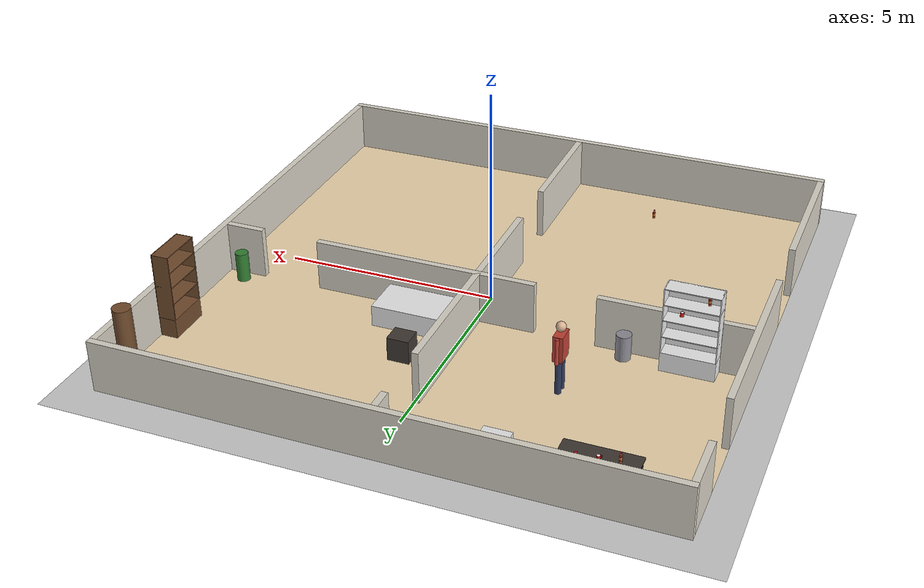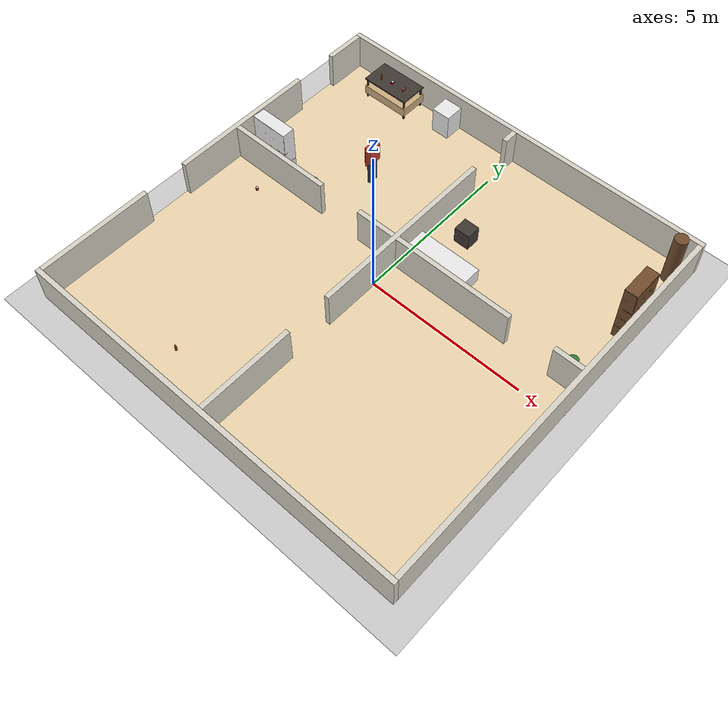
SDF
<sdf version="1.6">
 <world name="robocup_casa">
  <include><uri>model://sun</uri></include>
  <include><uri>model://ground_plane</uri></include>
  <model name="muros">
   <static>true</static>
   <link name="l0">
    <pose>0.000 -6.225 0.600 0 0 0.0000</pose>
    <collision name="c"><geometry><box><size>12.600 0.150 1.200</size></box></geometry></collision>
    <visual name="v">
     <geometry><box><size>12.600 0.150 1.200</size></box></geometry>
     <material><ambient>0.85 0.83 0.78 1</ambient><diffuse>0.85 0.83 0.78 1</diffuse></material>
    </visual>
   </link>
   <link name="l1">
    <pose>0.000 6.225 0.600 0 0 0.0000</pose>
    <collision name="c"><geometry><box><size>12.600 0.150 1.200</size></box></geometry></collision>
    <visual name="v">
     <geometry><box><size>12.600 0.150 1.200</size></box></geometry>
     <material><ambient>0.85 0.83 0.78 1</ambient><diffuse>0.85 0.83 0.78 1</diffuse></material>
    </visual>
   </link>
   <link name="l2">
    <pose>6.225 0.000 0.600 0 0 0.0000</pose>
    <collision name="c"><geometry><box><size>0.150 12.300 1.200</size></box></geometry></collision>
    <visual name="v">
     <geometry><box><size>0.150 12.300 1.200</size></box></geometry>
     <material><ambient>0.85 0.83 0.78 1</ambient><diffuse>0.85 0.83 0.78 1</diffuse></material>
    </visual>
   </link>
   <link name="l3">
    <pose>-6.225 -4.356 0.600 0 0 0.0000</pose>
    <collision name="c"><geometry><box><size>0.150 3.588 1.200</size></box></geometry></collision>
    <visual name="v">
     <geometry><box><size>0.150 3.588 1.200</size></box></geometry>
     <material><ambient>0.85 0.83 0.78 1</ambient><diffuse>0.85 0.83 0.78 1</diffuse></material>
    </visual>
   </link>
   <link name="l4">
    <pose>-6.225 1.169 0.600 0 0 0.0000</pose>
    <collision name="c"><geometry><box><size>0.150 4.662 1.200</size></box></geometry></collision>
    <visual name="v">
     <geometry><box><size>0.150 4.662 1.200</size></box></geometry>
     <material><ambient>0.85 0.83 0.78 1</ambient><diffuse>0.85 0.83 0.78 1</diffuse></material>
    </visual>
   </link>
   <link name="l5">
    <pose>-6.225 5.525 0.600 0 0 0.0000</pose>
    <collision name="c"><geometry><box><size>0.150 1.250 1.200</size></box></geometry></collision>
    <visual name="v">
     <geometry><box><size>0.150 1.250 1.200</size></box></geometry>
     <material><ambient>0.85 0.83 0.78 1</ambient><diffuse>0.85 0.83 0.78 1</diffuse></material>
    </visual>
   </link>
   <link name="l6">
    <pose>-0.035 -4.664 0.600 0 0 0.0000</pose>
    <collision name="c"><geometry><box><size>0.150 2.972 1.200</size></box></geometry></collision>
    <visual name="v">
     <geometry><box><size>0.150 2.972 1.200</size></box></geometry>
     <material><ambient>0.85 0.83 0.78 1</ambient><diffuse>0.85 0.83 0.78 1</diffuse></material>
    </visual>
   </link>
   <link name="l7">
    <pose>-0.035 1.253 0.600 0 0 0.0000</pose>
    <collision name="c"><geometry><box><size>0.150 6.062 1.200</size></box></geometry></collision>
    <visual name="v">
     <geometry><box><size>0.150 6.062 1.200</size></box></geometry>
     <material><ambient>0.85 0.83 0.78 1</ambient><diffuse>0.85 0.83 0.78 1</diffuse></material>
    </visual>
   </link>
   <link name="l8">
    <pose>-0.035 5.917 0.600 0 0 0.0000</pose>
    <collision name="c"><geometry><box><size>0.150 0.466 1.200</size></box></geometry></collision>
    <visual name="v">
     <geometry><box><size>0.150 0.466 1.200</size></box></geometry>
     <material><ambient>0.85 0.83 0.78 1</ambient><diffuse>0.85 0.83 0.78 1</diffuse></material>
    </visual>
   </link>
   <link name="l9">
    <pose>-4.461 0.917 0.600 0 0 0.0000</pose>
    <collision name="c"><geometry><box><size>3.378 0.150 1.200</size></box></geometry></collision>
    <visual name="v">
     <geometry><box><size>3.378 0.150 1.200</size></box></geometry>
     <material><ambient>0.85 0.83 0.78 1</ambient><diffuse>0.85 0.83 0.78 1</diffuse></material>
    </visual>
   </link>
   <link name="l10">
    <pose>1.239 0.917 0.600 0 0 0.0000</pose>
    <collision name="c"><geometry><box><size>5.222 0.150 1.200</size></box></geometry></collision>
    <visual name="v">
     <geometry><box><size>5.222 0.150 1.200</size></box></geometry>
     <material><ambient>0.85 0.83 0.78 1</ambient><diffuse>0.85 0.83 0.78 1</diffuse></material>
    </visual>
   </link>
   <link name="l11">
    <pose>5.700 0.917 0.600 0 0 0.0000</pose>
    <collision name="c"><geometry><box><size>0.900 0.150 1.200</size></box></geometry></collision>
    <visual name="v">
     <geometry><box><size>0.900 0.150 1.200</size></box></geometry>
     <material><ambient>0.85 0.83 0.78 1</ambient><diffuse>0.85 0.83 0.78 1</diffuse></material>
    </visual>
   </link>
  </model>
  <model name="piso_casa">
   <static>true</static>
   <link name="l">
    <pose>0.000 0.000 0.0005 0 0 0</pose>
    <visual name="v">
     <geometry><box><size>12.6 12.6 0.001</size></box></geometry>
     <material><ambient>0.93 0.84 0.68 1</ambient><diffuse>0.93 0.84 0.68 1</diffuse></material>
    </visual>
   </link>
  </model>
  <model name="laundry_table">
   <static>true</static>
   <link name="l0">
    <pose>-4.298 5.700 0.300 0 0 0.0000</pose>
    <collision name="c"><geometry><box><size>1.600 0.900 0.300</size></box></geometry></collision>
    <visual name="v">
     <geometry><box><size>1.600 0.900 0.300</size></box></geometry>
     <material><ambient>0.80 0.68 0.50 1</ambient><diffuse>0.80 0.68 0.50 1</diffuse></material>
    </visual>
   </link>
   <link name="l1">
    <pose>-4.298 5.700 0.730 0 0 0.0000</pose>
    <collision name="c"><geometry><box><size>1.600 0.900 0.040</size></box></geometry></collision>
    <visual name="v">
     <geometry><box><size>1.600 0.900 0.040</size></box></geometry>
     <material><ambient>0.25 0.22 0.20 1</ambient><diffuse>0.25 0.22 0.20 1</diffuse></material>
    </visual>
   </link>
   <link name="l2">
    <pose>-5.038 5.310 0.355 0 0 0.0000</pose>
    <collision name="c"><geometry><box><size>0.050 0.050 0.710</size></box></geometry></collision>
    <visual name="v">
     <geometry><box><size>0.050 0.050 0.710</size></box></geometry>
     <material><ambient>0.25 0.22 0.20 1</ambient><diffuse>0.25 0.22 0.20 1</diffuse></material>
    </visual>
   </link>
   <link name="l3">
    <pose>-5.038 6.090 0.355 0 0 0.0000</pose>
    <collision name="c"><geometry><box><size>0.050 0.050 0.710</size></box></geometry></collision>
    <visual name="v">
     <geometry><box><size>0.050 0.050 0.710</size></box></geometry>
     <material><ambient>0.25 0.22 0.20 1</ambient><diffuse>0.25 0.22 0.20 1</diffuse></material>
    </visual>
   </link>
   <link name="l4">
    <pose>-3.558 5.310 0.355 0 0 0.0000</pose>
    <collision name="c"><geometry><box><size>0.050 0.050 0.710</size></box></geometry></collision>
    <visual name="v">
     <geometry><box><size>0.050 0.050 0.710</size></box></geometry>
     <material><ambient>0.25 0.22 0.20 1</ambient><diffuse>0.25 0.22 0.20 1</diffuse></material>
    </visual>
   </link>
   <link name="l5">
    <pose>-3.558 6.090 0.355 0 0 0.0000</pose>
    <collision name="c"><geometry><box><size>0.050 0.050 0.710</size></box></geometry></collision>
    <visual name="v">
     <geometry><box><size>0.050 0.050 0.710</size></box></geometry>
     <material><ambient>0.25 0.22 0.20 1</ambient><diffuse>0.25 0.22 0.20 1</diffuse></material>
    </visual>
   </link>
  </model>
  <model name="washing_machine">
   <static>true</static>
   <link name="l0">
    <pose>-2.310 5.850 0.425 0 0 0.0000</pose>
    <collision name="c"><geometry><box><size>0.600 0.600 0.850</size></box></geometry></collision>
    <visual name="v">
     <geometry><box><size>0.600 0.600 0.850</size></box></geometry>
     <material><ambient>0.92 0.92 0.92 1</ambient><diffuse>0.92 0.92 0.92 1</diffuse></material>
    </visual>
   </link>
  </model>
  <model name="shelf">
   <static>true</static>
   <link name="l0">
    <pose>-4.900 1.192 0.225 0 0 0.0000</pose>
    <collision name="c"><geometry><box><size>1.200 0.400 0.450</size></box></geometry></collision>
    <visual name="v">
     <geometry><box><size>1.200 0.400 0.450</size></box></geometry>
     <material><ambient>0.92 0.92 0.92 1</ambient><diffuse>0.92 0.92 0.92 1</diffuse></material>
    </visual>
   </link>
   <link name="l1">
    <pose>-4.900 1.002 1.225 0 0 0.0000</pose>
    <collision name="c"><geometry><box><size>1.200 0.020 1.550</size></box></geometry></collision>
    <visual name="v">
     <geometry><box><size>1.200 0.020 1.550</size></box></geometry>
     <material><ambient>0.92 0.92 0.92 1</ambient><diffuse>0.92 0.92 0.92 1</diffuse></material>
    </visual>
   </link>
   <link name="l2">
    <pose>-5.490 1.192 1.225 0 0 0.0000</pose>
    <collision name="c"><geometry><box><size>0.020 0.400 1.550</size></box></geometry></collision>
    <visual name="v">
     <geometry><box><size>0.020 0.400 1.550</size></box></geometry>
     <material><ambient>0.92 0.92 0.92 1</ambient><diffuse>0.92 0.92 0.92 1</diffuse></material>
    </visual>
   </link>
   <link name="l3">
    <pose>-4.310 1.192 1.225 0 0 0.0000</pose>
    <collision name="c"><geometry><box><size>0.020 0.400 1.550</size></box></geometry></collision>
    <visual name="v">
     <geometry><box><size>0.020 0.400 1.550</size></box></geometry>
     <material><ambient>0.92 0.92 0.92 1</ambient><diffuse>0.92 0.92 0.92 1</diffuse></material>
    </visual>
   </link>
   <link name="l4">
    <pose>-4.900 1.192 0.840 0 0 0.0000</pose>
    <collision name="c"><geometry><box><size>1.200 0.400 0.020</size></box></geometry></collision>
    <visual name="v">
     <geometry><box><size>1.200 0.400 0.020</size></box></geometry>
     <material><ambient>0.92 0.92 0.92 1</ambient><diffuse>0.92 0.92 0.92 1</diffuse></material>
    </visual>
   </link>
   <link name="l5">
    <pose>-4.900 1.192 1.240 0 0 0.0000</pose>
    <collision name="c"><geometry><box><size>1.200 0.400 0.020</size></box></geometry></collision>
    <visual name="v">
     <geometry><box><size>1.200 0.400 0.020</size></box></geometry>
     <material><ambient>0.92 0.92 0.92 1</ambient><diffuse>0.92 0.92 0.92 1</diffuse></material>
    </visual>
   </link>
   <link name="l6">
    <pose>-4.900 1.192 1.610 0 0 0.0000</pose>
    <collision name="c"><geometry><box><size>1.200 0.400 0.020</size></box></geometry></collision>
    <visual name="v">
     <geometry><box><size>1.200 0.400 0.020</size></box></geometry>
     <material><ambient>0.92 0.92 0.92 1</ambient><diffuse>0.92 0.92 0.92 1</diffuse></material>
    </visual>
   </link>
   <link name="l7">
    <pose>-4.900 1.192 1.990 0 0 0.0000</pose>
    <collision name="c"><geometry><box><size>1.200 0.400 0.020</size></box></geometry></collision>
    <visual name="v">
     <geometry><box><size>1.200 0.400 0.020</size></box></geometry>
     <material><ambient>0.92 0.92 0.92 1</ambient><diffuse>0.92 0.92 0.92 1</diffuse></material>
    </visual>
   </link>
  </model>
  <model name="laundry_trash_bin">
   <static>true</static>
   <link name="l0">
    <pose>-3.472 1.212 0.300 0 0 0.0000</pose>
    <collision name="c">
     <geometry><cylinder><radius>0.170</radius><length>0.600</length></cylinder></geometry>
    </collision>
    <visual name="v">
     <geometry><cylinder><radius>0.170</radius><length>0.600</length></cylinder></geometry>
     <material><ambient>0.55 0.55 0.58 1</ambient><diffuse>0.55 0.55 0.58 1</diffuse></material>
    </visual>
   </link>
  </model>
  <model name="bed">
   <static>true</static>
   <link name="l0">
    <pose>1.040 1.492 0.250 0 0 0.0000</pose>
    <collision name="c"><geometry><box><size>2.000 1.000 0.500</size></box></geometry></collision>
    <visual name="v">
     <geometry><box><size>2.000 1.000 0.500</size></box></geometry>
     <material><ambient>0.92 0.92 0.92 1</ambient><diffuse>0.92 0.92 0.92 1</diffuse></material>
    </visual>
   </link>
  </model>
  <model name="bedside_table">
   <static>true</static>
   <link name="l0">
    <pose>0.910 2.870 0.275 0 0 0.0000</pose>
    <collision name="c"><geometry><box><size>0.500 0.450 0.550</size></box></geometry></collision>
    <visual name="v">
     <geometry><box><size>0.500 0.450 0.550</size></box></geometry>
     <material><ambient>0.25 0.22 0.20 1</ambient><diffuse>0.25 0.22 0.20 1</diffuse></material>
    </visual>
   </link>
  </model>
  <model name="coat_rack">
   <static>true</static>
   <link name="l0">
    <pose>5.850 5.600 0.850 0 0 0.0000</pose>
    <collision name="c">
     <geometry><cylinder><radius>0.200</radius><length>1.700</length></cylinder></geometry>
    </collision>
    <visual name="v">
     <geometry><cylinder><radius>0.200</radius><length>1.700</length></cylinder></geometry>
     <material><ambient>0.45 0.30 0.18 1</ambient><diffuse>0.45 0.30 0.18 1</diffuse></material>
    </visual>
   </link>
  </model>
  <model name="bookshelf">
   <static>true</static>
   <link name="l0">
    <pose>5.950 3.500 0.225 0 0 0.0000</pose>
    <collision name="c"><geometry><box><size>0.400 1.000 0.450</size></box></geometry></collision>
    <visual name="v">
     <geometry><box><size>0.400 1.000 0.450</size></box></geometry>
     <material><ambient>0.45 0.30 0.18 1</ambient><diffuse>0.45 0.30 0.18 1</diffuse></material>
    </visual>
   </link>
   <link name="l1">
    <pose>6.140 3.500 1.225 0 0 0.0000</pose>
    <collision name="c"><geometry><box><size>0.020 1.000 1.550</size></box></geometry></collision>
    <visual name="v">
     <geometry><box><size>0.020 1.000 1.550</size></box></geometry>
     <material><ambient>0.45 0.30 0.18 1</ambient><diffuse>0.45 0.30 0.18 1</diffuse></material>
    </visual>
   </link>
   <link name="l2">
    <pose>5.950 3.010 1.225 0 0 0.0000</pose>
    <collision name="c"><geometry><box><size>0.400 0.020 1.550</size></box></geometry></collision>
    <visual name="v">
     <geometry><box><size>0.400 0.020 1.550</size></box></geometry>
     <material><ambient>0.45 0.30 0.18 1</ambient><diffuse>0.45 0.30 0.18 1</diffuse></material>
    </visual>
   </link>
   <link name="l3">
    <pose>5.950 3.990 1.225 0 0 0.0000</pose>
    <collision name="c"><geometry><box><size>0.400 0.020 1.550</size></box></geometry></collision>
    <visual name="v">
     <geometry><box><size>0.400 0.020 1.550</size></box></geometry>
     <material><ambient>0.45 0.30 0.18 1</ambient><diffuse>0.45 0.30 0.18 1</diffuse></material>
    </visual>
   </link>
   <link name="l4">
    <pose>5.950 3.500 0.840 0 0 0.0000</pose>
    <collision name="c"><geometry><box><size>0.400 1.000 0.020</size></box></geometry></collision>
    <visual name="v">
     <geometry><box><size>0.400 1.000 0.020</size></box></geometry>
     <material><ambient>0.45 0.30 0.18 1</ambient><diffuse>0.45 0.30 0.18 1</diffuse></material>
    </visual>
   </link>
   <link name="l5">
    <pose>5.950 3.500 1.240 0 0 0.0000</pose>
    <collision name="c"><geometry><box><size>0.400 1.000 0.020</size></box></geometry></collision>
    <visual name="v">
     <geometry><box><size>0.400 1.000 0.020</size></box></geometry>
     <material><ambient>0.45 0.30 0.18 1</ambient><diffuse>0.45 0.30 0.18 1</diffuse></material>
    </visual>
   </link>
   <link name="l6">
    <pose>5.950 3.500 1.610 0 0 0.0000</pose>
    <collision name="c"><geometry><box><size>0.400 1.000 0.020</size></box></geometry></collision>
    <visual name="v">
     <geometry><box><size>0.400 1.000 0.020</size></box></geometry>
     <material><ambient>0.45 0.30 0.18 1</ambient><diffuse>0.45 0.30 0.18 1</diffuse></material>
    </visual>
   </link>
   <link name="l7">
    <pose>5.950 3.500 1.990 0 0 0.0000</pose>
    <collision name="c"><geometry><box><size>0.400 1.000 0.020</size></box></geometry></collision>
    <visual name="v">
     <geometry><box><size>0.400 1.000 0.020</size></box></geometry>
     <material><ambient>0.45 0.30 0.18 1</ambient><diffuse>0.45 0.30 0.18 1</diffuse></material>
    </visual>
   </link>
  </model>
  <model name="planta_bedroom">
   <static>true</static>
   <link name="l0">
    <pose>5.670 1.262 0.350 0 0 0.0000</pose>
    <collision name="c">
     <geometry><cylinder><radius>0.150</radius><length>0.700</length></cylinder></geometry>
    </collision>
    <visual name="v">
     <geometry><cylinder><radius>0.150</radius><length>0.700</length></cylinder></geometry>
     <material><ambient>0.20 0.50 0.20 1</ambient><diffuse>0.20 0.50 0.20 1</diffuse></material>
    </visual>
   </link>
  </model>
  <model name="botella_laundry">
   <pose>-4.698 5.550 0.751 0 0 1.571</pose>
   <link name="link">
    <inertial>
     <pose>0 0 0.1100 0 0 0</pose>
     <mass>0.55</mass>
     <inertia>
      <ixx>2.368e-03</ixx>
      <iyy>2.368e-03</iyy>
      <izz>2.995e-04</izz>
      <ixy>0</ixy>
      <ixz>0</ixz>
      <iyz>0</iyz>
     </inertia>
    </inertial>
    <collision name="c">
     <pose>0 0 0.1100 0 0 0</pose>
     <geometry><cylinder><radius>0.0330</radius><length>0.2200</length></cylinder></geometry>
     <surface><friction><ode><mu>1.0</mu><mu2>1.0</mu2></ode></friction></surface>
    </collision>
    <visual name="v0">
     <pose>0 0 0.075 0 0 0</pose>
     <geometry><cylinder><radius>0.0330</radius><length>0.1500</length></cylinder></geometry>
     <material><ambient>0.86 0.40 0.22 1</ambient><diffuse>0.86 0.40 0.22 1</diffuse></material>
    </visual>
    <visual name="v1">
     <pose>0 0 0.16 0 0 0</pose>
     <geometry><cylinder><radius>0.0270</radius><length>0.0200</length></cylinder></geometry>
     <material><ambient>0.86 0.40 0.22 1</ambient><diffuse>0.86 0.40 0.22 1</diffuse></material>
    </visual>
    <visual name="v2">
     <pose>0 0 0.182 0 0 0</pose>
     <geometry><cylinder><radius>0.0150</radius><length>0.0250</length></cylinder></geometry>
     <transparency>0.4</transparency>
     <material><ambient>0.75 0.78 0.80 1</ambient><diffuse>0.75 0.78 0.80 1</diffuse></material>
    </visual>
    <visual name="v3">
     <pose>0 0 0.192 0 0 0</pose>
     <geometry><cylinder><radius>0.0190</radius><length>0.0040</length></cylinder></geometry>
     <transparency>0.2</transparency>
     <material><ambient>0.75 0.78 0.80 1</ambient><diffuse>0.75 0.78 0.80 1</diffuse></material>
    </visual>
    <visual name="v4">
     <pose>0 0 0.2075 0 0 0</pose>
     <geometry><cylinder><radius>0.0160</radius><length>0.0250</length></cylinder></geometry>
     <material><ambient>0.80 0.10 0.12 1</ambient><diffuse>0.80 0.10 0.12 1</diffuse></material>
    </visual>
    <visual name="v5">
     <pose>0 0 0.13 0 0 0</pose>
     <geometry><cylinder><radius>0.0340</radius><length>0.0120</length></cylinder></geometry>
     <material><ambient>0.80 0.10 0.12 1</ambient><diffuse>0.80 0.10 0.12 1</diffuse></material>
    </visual>
    <visual name="v6">
     <pose>0 0 0.0625 0 0 0</pose>
     <geometry><cylinder><radius>0.0340</radius><length>0.0150</length></cylinder></geometry>
     <material><ambient>0.85 0.75 0.20 1</ambient><diffuse>0.85 0.75 0.20 1</diffuse></material>
    </visual>
    <visual name="v7">
     <pose>0 0 0.05 0 0 0</pose>
     <geometry><cylinder><radius>0.0340</radius><length>0.0100</length></cylinder></geometry>
     <material><ambient>0.30 0.60 0.25 1</ambient><diffuse>0.30 0.60 0.25 1</diffuse></material>
    </visual>
    <visual name="v8">
     <pose>0 0 0.0375 0 0 0</pose>
     <geometry><cylinder><radius>0.0340</radius><length>0.0150</length></cylinder></geometry>
     <material><ambient>0.80 0.10 0.12 1</ambient><diffuse>0.80 0.10 0.12 1</diffuse></material>
    </visual>
   </link>
  </model>
  <model name="taza_laundry">
   <pose>-4.298 5.630 0.751 0 0 -2.312</pose>
   <link name="link">
    <inertial>
     <pose>0 0 0.0475 0 0 0</pose>
     <mass>0.3</mass>
     <inertia>
      <ixx>3.643e-04</ixx>
      <iyy>3.643e-04</iyy>
      <izz>2.773e-04</izz>
      <ixy>0</ixy>
      <ixz>0</ixz>
      <iyz>0</iyz>
     </inertia>
    </inertial>
    <collision name="c">
     <pose>0 0 0.0475 0 0 0</pose>
     <geometry><cylinder><radius>0.0430</radius><length>0.0950</length></cylinder></geometry>
     <surface><friction><ode><mu>1.0</mu><mu2>1.0</mu2></ode></friction></surface>
    </collision>
    <visual name="v0">
     <pose>0 0 0.0475 0 0 0</pose>
     <geometry><cylinder><radius>0.0430</radius><length>0.0950</length></cylinder></geometry>
     <material><ambient>0.82 0.08 0.08 1</ambient><diffuse>0.82 0.08 0.08 1</diffuse></material>
    </visual>
    <visual name="v1">
     <pose>0 0 0.0945 0 0 0</pose>
     <geometry><cylinder><radius>0.0370</radius><length>0.0020</length></cylinder></geometry>
     <material><ambient>0.95 0.95 0.95 1</ambient><diffuse>0.95 0.95 0.95 1</diffuse></material>
    </visual>
    <visual name="v2">
     <pose>0.073 0 0.048 0 0 0</pose>
     <geometry><box><size>0.0120 0.0140 0.0660</size></box></geometry>
     <material><ambient>0.82 0.08 0.08 1</ambient><diffuse>0.82 0.08 0.08 1</diffuse></material>
    </visual>
    <visual name="v3">
     <pose>0.058 0 0.075 0 0 0</pose>
     <geometry><box><size>0.0320 0.0140 0.0120</size></box></geometry>
     <material><ambient>0.82 0.08 0.08 1</ambient><diffuse>0.82 0.08 0.08 1</diffuse></material>
    </visual>
    <visual name="v4">
     <pose>0.058 0 0.021 0 0 0</pose>
     <geometry><box><size>0.0320 0.0140 0.0120</size></box></geometry>
     <material><ambient>0.82 0.08 0.08 1</ambient><diffuse>0.82 0.08 0.08 1</diffuse></material>
    </visual>
   </link>
  </model>
  <model name="galletas_laundry">
   <pose>-3.878 5.670 0.751 0 0 1.871</pose>
   <link name="link">
    <inertial>
     <pose>0 0 0.0175 0 0 0</pose>
     <mass>0.13</mass>
     <inertia>
      <ixx>5.491e-05</ixx>
      <iyy>4.044e-04</iyy>
      <izz>4.327e-04</izz>
      <ixy>0</ixy>
      <ixz>0</ixz>
      <iyz>0</iyz>
     </inertia>
    </inertial>
    <collision name="c">
     <pose>0 0 0.0175 0 0 0</pose>
     <geometry><box><size>0.1900 0.0620 0.0350</size></box></geometry>
     <surface><friction><ode><mu>1.0</mu><mu2>1.0</mu2></ode></friction></surface>
    </collision>
    <visual name="v0">
     <pose>0 0 0.0175 0 0 0</pose>
     <geometry><box><size>0.1900 0.0620 0.0350</size></box></geometry>
     <material><ambient>0.70 0.08 0.10 1</ambient><diffuse>0.70 0.08 0.10 1</diffuse></material>
    </visual>
    <visual name="v1">
     <pose>0.02 0 0.0355 0 0 0</pose>
     <geometry><box><size>0.1200 0.0300 0.0010</size></box></geometry>
     <material><ambient>0.85 0.65 0.30 1</ambient><diffuse>0.85 0.65 0.30 1</diffuse></material>
    </visual>
   </link>
  </model>
  <model name="taza_estante">
   <pose>-4.650 1.102 1.251 0 0 -1.571</pose>
   <link name="link">
    <inertial>
     <pose>0 0 0.0475 0 0 0</pose>
     <mass>0.3</mass>
     <inertia>
      <ixx>3.643e-04</ixx>
      <iyy>3.643e-04</iyy>
      <izz>2.773e-04</izz>
      <ixy>0</ixy>
      <ixz>0</ixz>
      <iyz>0</iyz>
     </inertia>
    </inertial>
    <collision name="c">
     <pose>0 0 0.0475 0 0 0</pose>
     <geometry><cylinder><radius>0.0430</radius><length>0.0950</length></cylinder></geometry>
     <surface><friction><ode><mu>1.0</mu><mu2>1.0</mu2></ode></friction></surface>
    </collision>
    <visual name="v0">
     <pose>0 0 0.0475 0 0 0</pose>
     <geometry><cylinder><radius>0.0430</radius><length>0.0950</length></cylinder></geometry>
     <material><ambient>0.82 0.08 0.08 1</ambient><diffuse>0.82 0.08 0.08 1</diffuse></material>
    </visual>
    <visual name="v1">
     <pose>0 0 0.0945 0 0 0</pose>
     <geometry><cylinder><radius>0.0370</radius><length>0.0020</length></cylinder></geometry>
     <material><ambient>0.95 0.95 0.95 1</ambient><diffuse>0.95 0.95 0.95 1</diffuse></material>
    </visual>
    <visual name="v2">
     <pose>0.073 0 0.048 0 0 0</pose>
     <geometry><box><size>0.0120 0.0140 0.0660</size></box></geometry>
     <material><ambient>0.82 0.08 0.08 1</ambient><diffuse>0.82 0.08 0.08 1</diffuse></material>
    </visual>
    <visual name="v3">
     <pose>0.058 0 0.075 0 0 0</pose>
     <geometry><box><size>0.0320 0.0140 0.0120</size></box></geometry>
     <material><ambient>0.82 0.08 0.08 1</ambient><diffuse>0.82 0.08 0.08 1</diffuse></material>
    </visual>
    <visual name="v4">
     <pose>0.058 0 0.021 0 0 0</pose>
     <geometry><box><size>0.0320 0.0140 0.0120</size></box></geometry>
     <material><ambient>0.82 0.08 0.08 1</ambient><diffuse>0.82 0.08 0.08 1</diffuse></material>
    </visual>
   </link>
  </model>
  <model name="botella_estante">
   <pose>-5.200 1.072 1.621 0 0 -1.571</pose>
   <link name="link">
    <inertial>
     <pose>0 0 0.1100 0 0 0</pose>
     <mass>0.55</mass>
     <inertia>
      <ixx>2.368e-03</ixx>
      <iyy>2.368e-03</iyy>
      <izz>2.995e-04</izz>
      <ixy>0</ixy>
      <ixz>0</ixz>
      <iyz>0</iyz>
     </inertia>
    </inertial>
    <collision name="c">
     <pose>0 0 0.1100 0 0 0</pose>
     <geometry><cylinder><radius>0.0330</radius><length>0.2200</length></cylinder></geometry>
     <surface><friction><ode><mu>1.0</mu><mu2>1.0</mu2></ode></friction></surface>
    </collision>
    <visual name="v0">
     <pose>0 0 0.075 0 0 0</pose>
     <geometry><cylinder><radius>0.0330</radius><length>0.1500</length></cylinder></geometry>
     <material><ambient>0.86 0.40 0.22 1</ambient><diffuse>0.86 0.40 0.22 1</diffuse></material>
    </visual>
    <visual name="v1">
     <pose>0 0 0.16 0 0 0</pose>
     <geometry><cylinder><radius>0.0270</radius><length>0.0200</length></cylinder></geometry>
     <material><ambient>0.86 0.40 0.22 1</ambient><diffuse>0.86 0.40 0.22 1</diffuse></material>
    </visual>
    <visual name="v2">
     <pose>0 0 0.182 0 0 0</pose>
     <geometry><cylinder><radius>0.0150</radius><length>0.0250</length></cylinder></geometry>
     <transparency>0.4</transparency>
     <material><ambient>0.75 0.78 0.80 1</ambient><diffuse>0.75 0.78 0.80 1</diffuse></material>
    </visual>
    <visual name="v3">
     <pose>0 0 0.192 0 0 0</pose>
     <geometry><cylinder><radius>0.0190</radius><length>0.0040</length></cylinder></geometry>
     <transparency>0.2</transparency>
     <material><ambient>0.75 0.78 0.80 1</ambient><diffuse>0.75 0.78 0.80 1</diffuse></material>
    </visual>
    <visual name="v4">
     <pose>0 0 0.2075 0 0 0</pose>
     <geometry><cylinder><radius>0.0160</radius><length>0.0250</length></cylinder></geometry>
     <material><ambient>0.80 0.10 0.12 1</ambient><diffuse>0.80 0.10 0.12 1</diffuse></material>
    </visual>
    <visual name="v5">
     <pose>0 0 0.13 0 0 0</pose>
     <geometry><cylinder><radius>0.0340</radius><length>0.0120</length></cylinder></geometry>
     <material><ambient>0.80 0.10 0.12 1</ambient><diffuse>0.80 0.10 0.12 1</diffuse></material>
    </visual>
    <visual name="v6">
     <pose>0 0 0.0625 0 0 0</pose>
     <geometry><cylinder><radius>0.0340</radius><length>0.0150</length></cylinder></geometry>
     <material><ambient>0.85 0.75 0.20 1</ambient><diffuse>0.85 0.75 0.20 1</diffuse></material>
    </visual>
    <visual name="v7">
     <pose>0 0 0.05 0 0 0</pose>
     <geometry><cylinder><radius>0.0340</radius><length>0.0100</length></cylinder></geometry>
     <material><ambient>0.30 0.60 0.25 1</ambient><diffuse>0.30 0.60 0.25 1</diffuse></material>
    </visual>
    <visual name="v8">
     <pose>0 0 0.0375 0 0 0</pose>
     <geometry><cylinder><radius>0.0340</radius><length>0.0150</length></cylinder></geometry>
     <material><ambient>0.80 0.10 0.12 1</ambient><diffuse>0.80 0.10 0.12 1</diffuse></material>
    </visual>
   </link>
  </model>
  <model name="botella_suelo">
   <pose>-2.400 -5.050 0.001 0 0 -1.571</pose>
   <link name="link">
    <inertial>
     <pose>0 0 0.1100 0 0 0</pose>
     <mass>0.55</mass>
     <inertia>
      <ixx>2.368e-03</ixx>
      <iyy>2.368e-03</iyy>
      <izz>2.995e-04</izz>
      <ixy>0</ixy>
      <ixz>0</ixz>
      <iyz>0</iyz>
     </inertia>
    </inertial>
    <collision name="c">
     <pose>0 0 0.1100 0 0 0</pose>
     <geometry><cylinder><radius>0.0330</radius><length>0.2200</length></cylinder></geometry>
     <surface><friction><ode><mu>1.0</mu><mu2>1.0</mu2></ode></friction></surface>
    </collision>
    <visual name="v0">
     <pose>0 0 0.075 0 0 0</pose>
     <geometry><cylinder><radius>0.0330</radius><length>0.1500</length></cylinder></geometry>
     <material><ambient>0.86 0.40 0.22 1</ambient><diffuse>0.86 0.40 0.22 1</diffuse></material>
    </visual>
    <visual name="v1">
     <pose>0 0 0.16 0 0 0</pose>
     <geometry><cylinder><radius>0.0270</radius><length>0.0200</length></cylinder></geometry>
     <material><ambient>0.86 0.40 0.22 1</ambient><diffuse>0.86 0.40 0.22 1</diffuse></material>
    </visual>
    <visual name="v2">
     <pose>0 0 0.182 0 0 0</pose>
     <geometry><cylinder><radius>0.0150</radius><length>0.0250</length></cylinder></geometry>
     <transparency>0.4</transparency>
     <material><ambient>0.75 0.78 0.80 1</ambient><diffuse>0.75 0.78 0.80 1</diffuse></material>
    </visual>
    <visual name="v3">
     <pose>0 0 0.192 0 0 0</pose>
     <geometry><cylinder><radius>0.0190</radius><length>0.0040</length></cylinder></geometry>
     <transparency>0.2</transparency>
     <material><ambient>0.75 0.78 0.80 1</ambient><diffuse>0.75 0.78 0.80 1</diffuse></material>
    </visual>
    <visual name="v4">
     <pose>0 0 0.2075 0 0 0</pose>
     <geometry><cylinder><radius>0.0160</radius><length>0.0250</length></cylinder></geometry>
     <material><ambient>0.80 0.10 0.12 1</ambient><diffuse>0.80 0.10 0.12 1</diffuse></material>
    </visual>
    <visual name="v5">
     <pose>0 0 0.13 0 0 0</pose>
     <geometry><cylinder><radius>0.0340</radius><length>0.0120</length></cylinder></geometry>
     <material><ambient>0.80 0.10 0.12 1</ambient><diffuse>0.80 0.10 0.12 1</diffuse></material>
    </visual>
    <visual name="v6">
     <pose>0 0 0.0625 0 0 0</pose>
     <geometry><cylinder><radius>0.0340</radius><length>0.0150</length></cylinder></geometry>
     <material><ambient>0.85 0.75 0.20 1</ambient><diffuse>0.85 0.75 0.20 1</diffuse></material>
    </visual>
    <visual name="v7">
     <pose>0 0 0.05 0 0 0</pose>
     <geometry><cylinder><radius>0.0340</radius><length>0.0100</length></cylinder></geometry>
     <material><ambient>0.30 0.60 0.25 1</ambient><diffuse>0.30 0.60 0.25 1</diffuse></material>
    </visual>
    <visual name="v8">
     <pose>0 0 0.0375 0 0 0</pose>
     <geometry><cylinder><radius>0.0340</radius><length>0.0150</length></cylinder></geometry>
     <material><ambient>0.80 0.10 0.12 1</ambient><diffuse>0.80 0.10 0.12 1</diffuse></material>
    </visual>
   </link>
  </model>
  <model name="taza_suelo">
   <pose>-4.812 0.242 0.001 0 0 2.571</pose>
   <link name="link">
    <inertial>
     <pose>0 0 0.0475 0 0 0</pose>
     <mass>0.3</mass>
     <inertia>
      <ixx>3.643e-04</ixx>
      <iyy>3.643e-04</iyy>
      <izz>2.773e-04</izz>
      <ixy>0</ixy>
      <ixz>0</ixz>
      <iyz>0</iyz>
     </inertia>
    </inertial>
    <collision name="c">
     <pose>0 0 0.0475 0 0 0</pose>
     <geometry><cylinder><radius>0.0430</radius><length>0.0950</length></cylinder></geometry>
     <surface><friction><ode><mu>1.0</mu><mu2>1.0</mu2></ode></friction></surface>
    </collision>
    <visual name="v0">
     <pose>0 0 0.0475 0 0 0</pose>
     <geometry><cylinder><radius>0.0430</radius><length>0.0950</length></cylinder></geometry>
     <material><ambient>0.82 0.08 0.08 1</ambient><diffuse>0.82 0.08 0.08 1</diffuse></material>
    </visual>
    <visual name="v1">
     <pose>0 0 0.0945 0 0 0</pose>
     <geometry><cylinder><radius>0.0370</radius><length>0.0020</length></cylinder></geometry>
     <material><ambient>0.95 0.95 0.95 1</ambient><diffuse>0.95 0.95 0.95 1</diffuse></material>
    </visual>
    <visual name="v2">
     <pose>0.073 0 0.048 0 0 0</pose>
     <geometry><box><size>0.0120 0.0140 0.0660</size></box></geometry>
     <material><ambient>0.82 0.08 0.08 1</ambient><diffuse>0.82 0.08 0.08 1</diffuse></material>
    </visual>
    <visual name="v3">
     <pose>0.058 0 0.075 0 0 0</pose>
     <geometry><box><size>0.0320 0.0140 0.0120</size></box></geometry>
     <material><ambient>0.82 0.08 0.08 1</ambient><diffuse>0.82 0.08 0.08 1</diffuse></material>
    </visual>
    <visual name="v4">
     <pose>0.058 0 0.021 0 0 0</pose>
     <geometry><box><size>0.0320 0.0140 0.0120</size></box></geometry>
     <material><ambient>0.82 0.08 0.08 1</ambient><diffuse>0.82 0.08 0.08 1</diffuse></material>
    </visual>
   </link>
  </model>
  <model name="caminante_lavanderia">
   <static>false</static>
   <pose>-2.598 2.810 0 0 0 -3.1414</pose>
   <link name="cuerpo">
    <gravity>false</gravity>
    <kinematic>true</kinematic>
    <inertial>
     <mass>70</mass>
     <inertia><ixx>10</ixx><iyy>10</iyy><izz>2</izz><ixy>0</ixy><ixz>0</ixz><iyz>0</iyz></inertia>
    </inertial>
    <collision name="c">
     <pose>0 0 0.85 0 0 0</pose>
     <geometry><cylinder><radius>0.20</radius><length>1.70</length></cylinder></geometry>
    </collision>
    <visual name="piernas_i">
     <pose>0.0 0.1 0.4 0 0 0</pose>
     <geometry><cylinder><radius>0.07</radius><length>0.80</length></cylinder></geometry>
     <material><ambient>0.18 0.22 0.35 1</ambient><diffuse>0.18 0.22 0.35 1</diffuse></material>
    </visual>
    <visual name="piernas_d">
     <pose>0.0 -0.1 0.4 0 0 0</pose>
     <geometry><cylinder><radius>0.07</radius><length>0.80</length></cylinder></geometry>
     <material><ambient>0.18 0.22 0.35 1</ambient><diffuse>0.18 0.22 0.35 1</diffuse></material>
    </visual>
    <visual name="torso">
     <pose>0.0 0.0 1.1 0 0 0</pose>
     <geometry><box><size>0.22 0.40 0.60</size></box></geometry>
     <material><ambient>0.75 0.25 0.2 1</ambient><diffuse>0.75 0.25 0.2 1</diffuse></material>
    </visual>
    <visual name="cabeza">
     <pose>0.0 0.0 1.55 0 0 0</pose>
     <geometry><sphere><radius>0.11</radius></sphere></geometry>
     <material><ambient>0.85 0.7 0.58 1</ambient><diffuse>0.85 0.7 0.58 1</diffuse></material>
    </visual>
    <visual name="brazo_i">
     <pose>0.0 0.24 1.08 0 0 0</pose>
     <geometry><cylinder><radius>0.04</radius><length>0.60</length></cylinder></geometry>
     <material><ambient>0.75 0.25 0.2 1</ambient><diffuse>0.75 0.25 0.2 1</diffuse></material>
    </visual>
    <visual name="brazo_d">
     <pose>0.0 -0.24 1.08 0 0 0</pose>
     <geometry><cylinder><radius>0.04</radius><length>0.60</length></cylinder></geometry>
     <material><ambient>0.75 0.25 0.2 1</ambient><diffuse>0.75 0.25 0.2 1</diffuse></material>
    </visual>
   </link>
  </model>
 </world>
</sdf>
